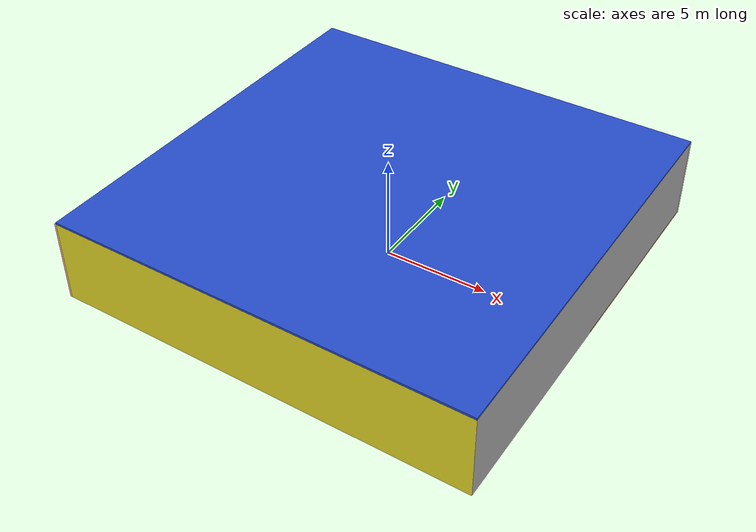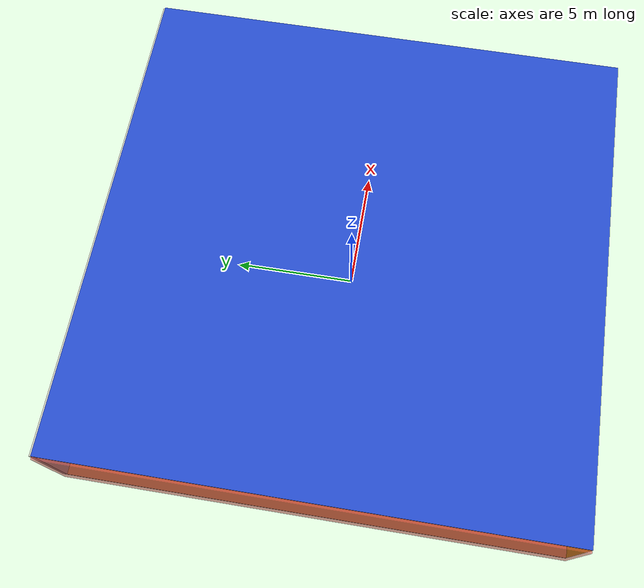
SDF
<sdf version="1.4">
 <world name="default">
  <physics type="ode">
   <max_step_size>0.001</max_step_size>
   <real_time_factor>1</real_time_factor>
   <real_time_update_rate>1000</real_time_update_rate>
   <gravity>0 0 -9.8</gravity>
  </physics>
  <scene><ambient>0.4 0.4 0.4 1</ambient><background>0.7 0.7 0.7 1</background><shadows>1</shadows></scene>
  <model name="Surrounding">
   <static>1</static>
   <link name="Ceiling">
    <collision name="Ceiling_Collision"><geometry><box><size>20 20 0.1</size></box></geometry></collision>
    <visual name="Ceiling_Visual">
     <geometry><box><size>20 20 0.1</size></box></geometry>
     <material>
      <script><uri>file://media/materials/scripts/gazebo.material</uri><name>Gazebo/BlueGlow</name></script>
     </material>
    </visual>
    <pose>0 0 4.05 0 0 0</pose>
   </link>
   <link name="Wall_South">
    <collision name="Wall_South_Collision">
     <geometry><box><size>20 0 4</size></box></geometry>
     <pose>0 0 2 0 -0 0</pose>
    </collision>
    <visual name="Wall_South_Visual">
     <pose>0 0 2 0 -0 0</pose>
     <geometry><box><size>20 0 4</size></box></geometry>
     <material>
      <script><uri>file://media/materials/scripts/gazebo.material</uri><name>Gazebo/YellowGlow</name></script>
     </material>
    </visual>
    <velocity_decay><linear>0</linear><angular>0</angular></velocity_decay>
    <pose>0 -10 0 0 -0 0</pose>
   </link>
   <link name="Wall_East">
    <collision name="Wall_21_Collision">
     <geometry><box><size>20 0 4</size></box></geometry>
     <pose>0 0 2 0 -0 0</pose>
    </collision>
    <visual name="Wall_21_Visual">
     <pose>0 0 2 0 -0 0</pose>
     <geometry><box><size>20 0 4</size></box></geometry>
     <material>
      <script><uri>file://media/materials/scripts/gazebo.material</uri><name>Gazebo/PioneerBody</name></script>
     </material>
    </visual>
    <velocity_decay><linear>0</linear><angular>0</angular></velocity_decay>
    <pose>10 0 0 0 -0 1.5708</pose>
   </link>
   <link name="Wall_North">
    <collision name="Wall_22_Collision">
     <geometry><box><size>20 0.2 4</size></box></geometry>
     <pose>0 0 2 0 -0 0</pose>
    </collision>
    <visual name="Wall_22_Visual">
     <pose>0 0 2 0 -0 0</pose>
     <geometry><box><size>20 0.2 4</size></box></geometry>
     <material>
      <script><uri>file://media/materials/scripts/gazebo.material</uri><name>Gazebo/PaintedWall</name></script>
     </material>
    </visual>
    <velocity_decay><linear>0</linear><angular>0</angular></velocity_decay>
    <pose>0 10 0 0 -0 0</pose>
   </link>
   <link name="Wall_West">
    <collision name="Wall_23_Collision">
     <geometry><box><size>20 0.2 4</size></box></geometry>
     <pose>0 0 2 0 -0 0</pose>
    </collision>
    <visual name="Wall_23_Visual">
     <pose>0 0 2 0 -0 0</pose>
     <geometry><box><size>20 0.2 4</size></box></geometry>
     <material>
      <script><uri>file://media/materials/scripts/gazebo.material</uri><name>Gazebo/RedTransparent</name></script>
     </material>
    </visual>
    <velocity_decay><linear>0</linear><angular>0</angular></velocity_decay>
    <pose>-10 0 0 0 0 -1.5708</pose>
   </link>
   <link name="Ground_link">
    <collision name="collision">
     <pose>0 0 .05 0 -0 0</pose>
     <geometry><box><size>20 20 0.1</size></box></geometry>
    </collision>
    <visual name="visual">
     <pose>0 0 .05 0 -0 0</pose>
     <geometry><box><size>20 20 0.1</size></box></geometry>
     <material>
      <script><uri>file://media/materials/scripts/gazebo.material</uri><name>Gazebo/WoodFloor</name></script>
     </material>
    </visual>
   </link>
   <static>1</static>
  </model>
  <spherical_coordinates>
   <surface_model>EARTH_WGS84</surface_model>
   <latitude_deg>0</latitude_deg>
   <longitude_deg>0</longitude_deg>
   <elevation>0</elevation>
   <heading_deg>0</heading_deg>
  </spherical_coordinates>
  <light name="lightball_0" type="diffuse">
   <diffuse>0.8 0.8 0.8 1</diffuse>
   <specular>0.2 0.2 0.2 1</specular>
   <attenuation>
    <range>100</range>
    <constant>0.7</constant>
    <linear>0.01</linear>
    <quadratic>0.001</quadratic>
   </attenuation>
   <direction>-0.5 0.1 -0.9</direction>
   <pose>2.72794418055 -8.18404734091 1.04139405278 0 0 0</pose>
  </light>
  <light name="lightball_1" type="diffuse">
   <diffuse>0.8 0.8 0.8 1</diffuse>
   <specular>0.2 0.2 0.2 1</specular>
   <attenuation>
    <range>100</range>
    <constant>0.7</constant>
    <linear>0.01</linear>
    <quadratic>0.001</quadratic>
   </attenuation>
   <direction>-0.5 0.1 -0.9</direction>
   <pose>5.64670138111 2.2093449288 0.880083130575 0 0 0</pose>
  </light>
  <light name="lightball_2" type="diffuse">
   <diffuse>0.8 0.8 0.8 1</diffuse>
   <specular>0.2 0.2 0.2 1</specular>
   <attenuation>
    <range>100</range>
    <constant>0.7</constant>
    <linear>0.01</linear>
    <quadratic>0.001</quadratic>
   </attenuation>
   <direction>-0.5 0.1 -0.9</direction>
   <pose>-2.89809434406 2.57713181084 1.43728793736 0 0 0</pose>
  </light>
  <light name="lightball_3" type="diffuse">
   <diffuse>0.8 0.8 0.8 1</diffuse>
   <specular>0.2 0.2 0.2 1</specular>
   <attenuation>
    <range>100</range>
    <constant>0.7</constant>
    <linear>0.01</linear>
    <quadratic>0.001</quadratic>
   </attenuation>
   <direction>-0.5 0.1 -0.9</direction>
   <pose>-8.04154829152 -6.14052763392 0.882079596018 0 0 0</pose>
  </light>
  <light name="lightball_4" type="diffuse">
   <diffuse>0.8 0.8 0.8 1</diffuse>
   <specular>0.2 0.2 0.2 1</specular>
   <attenuation>
    <range>100</range>
    <constant>0.7</constant>
    <linear>0.01</linear>
    <quadratic>0.001</quadratic>
   </attenuation>
   <direction>-0.5 0.1 -0.9</direction>
   <pose>-4.62075140249 -0.849031068122 1.31887967495 0 0 0</pose>
  </light>
  <light name="lightball_5" type="diffuse">
   <diffuse>0.8 0.8 0.8 1</diffuse>
   <specular>0.2 0.2 0.2 1</specular>
   <attenuation>
    <range>100</range>
    <constant>0.7</constant>
    <linear>0.01</linear>
    <quadratic>0.001</quadratic>
   </attenuation>
   <direction>-0.5 0.1 -0.9</direction>
   <pose>-0.614738424198 -3.43175225442 3.14343083111 0 0 0</pose>
  </light>
  <light name="lightball_6" type="diffuse">
   <diffuse>0.8 0.8 0.8 1</diffuse>
   <specular>0.2 0.2 0.2 1</specular>
   <attenuation>
    <range>100</range>
    <constant>0.7</constant>
    <linear>0.01</linear>
    <quadratic>0.001</quadratic>
   </attenuation>
   <direction>-0.5 0.1 -0.9</direction>
   <pose>8.84543568447 -4.45557160825 2.82784555963 0 0 0</pose>
  </light>
  <light name="lightball_7" type="diffuse">
   <diffuse>0.8 0.8 0.8 1</diffuse>
   <specular>0.2 0.2 0.2 1</specular>
   <attenuation>
    <range>100</range>
    <constant>0.7</constant>
    <linear>0.01</linear>
    <quadratic>0.001</quadratic>
   </attenuation>
   <direction>-0.5 0.1 -0.9</direction>
   <pose>1.7967337423 6.38941317345 1.64905588826 0 0 0</pose>
  </light>
  <light name="lightball_8" type="diffuse">
   <diffuse>0.8 0.8 0.8 1</diffuse>
   <specular>0.2 0.2 0.2 1</specular>
   <attenuation>
    <range>100</range>
    <constant>0.7</constant>
    <linear>0.01</linear>
    <quadratic>0.001</quadratic>
   </attenuation>
   <direction>-0.5 0.1 -0.9</direction>
   <pose>-9.53935615282 -7.69729938253 3.23555467838 0 0 0</pose>
  </light>
  <light name="lightball_9" type="diffuse">
   <diffuse>0.8 0.8 0.8 1</diffuse>
   <specular>0.2 0.2 0.2 1</specular>
   <attenuation>
    <range>100</range>
    <constant>0.7</constant>
    <linear>0.01</linear>
    <quadratic>0.001</quadratic>
   </attenuation>
   <direction>-0.5 0.1 -0.9</direction>
   <pose>7.05820571683 -1.60569659574 2.66404381369 0 0 0</pose>
  </light>
  <light name="lightball_10" type="diffuse">
   <diffuse>0.8 0.8 0.8 1</diffuse>
   <specular>0.2 0.2 0.2 1</specular>
   <attenuation>
    <range>100</range>
    <constant>0.7</constant>
    <linear>0.01</linear>
    <quadratic>0.001</quadratic>
   </attenuation>
   <direction>-0.5 0.1 -0.9</direction>
   <pose>8.76468460118 2.37818752001 3.01559584029 0 0 0</pose>
  </light>
  <light name="lightball_11" type="diffuse">
   <diffuse>0.8 0.8 0.8 1</diffuse>
   <specular>0.2 0.2 0.2 1</specular>
   <attenuation>
    <range>100</range>
    <constant>0.7</constant>
    <linear>0.01</linear>
    <quadratic>0.001</quadratic>
   </attenuation>
   <direction>-0.5 0.1 -0.9</direction>
   <pose>-5.33530057588 -5.18177596565 3.24549982083 0 0 0</pose>
  </light>
  <light name="lightball_12" type="diffuse">
   <diffuse>0.8 0.8 0.8 1</diffuse>
   <specular>0.2 0.2 0.2 1</specular>
   <attenuation>
    <range>100</range>
    <constant>0.7</constant>
    <linear>0.01</linear>
    <quadratic>0.001</quadratic>
   </attenuation>
   <direction>-0.5 0.1 -0.9</direction>
   <pose>6.06792603424 -5.44840577774 0.539636173662 0 0 0</pose>
  </light>
  <light name="lightball_13" type="diffuse">
   <diffuse>0.8 0.8 0.8 1</diffuse>
   <specular>0.2 0.2 0.2 1</specular>
   <attenuation>
    <range>100</range>
    <constant>0.7</constant>
    <linear>0.01</linear>
    <quadratic>0.001</quadratic>
   </attenuation>
   <direction>-0.5 0.1 -0.9</direction>
   <pose>-8.6629204958 -7.09645148278 0.612886629158 0 0 0</pose>
  </light>
  <include>
   <uri>model://construction_cone</uri>
   <pose>-5.53364466457 -6.64380867452 0 0 0 2.80362977598</pose>
  </include>
  <include><uri>model://cabinet</uri><pose>-4.39759868067 0.599883173741 0 0 0 1.45397595871</pose></include>
  <include><uri>model://cabinet</uri><pose>-1.62460107076 -4.00663354774 0 0 0 0.333641679212</pose></include>
  <include>
   <uri>model://robocup_3Dsim_goal</uri>
   <pose>4.20339007992 4.29280437004 0 0 0 2.83737232439</pose>
  </include>
  <include><uri>model://table</uri><pose>4.49615539385 6.58646077843 0 0 0 2.7549814392</pose></include>
 </world>
</sdf>

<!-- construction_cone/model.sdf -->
<sdf version="1.5">
  <model name="Construction Cone">
    <link name="link">
      <collision name="collision">
        <geometry>
          <mesh>
            <scale>10 10 10</scale>
            <uri>file://isr-testbed/construction_cone/meshes/construction_cone.dae</uri>
          </mesh>
        </geometry>
      </collision>
      <visual name="visual">
        <geometry>
          <mesh>
            <scale>10 10 10</scale>
            <uri>file://isr-testbed/construction_cone/meshes/construction_cone.dae</uri>
          </mesh>
        </geometry>
      </visual>
    </link>
  </model>
</sdf>

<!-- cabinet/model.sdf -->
<sdf version="1.5">
  <model name="cabinet">
    <static>true</static>
    <link name="cabinet_bottom_plate">
      <inertial>
        <pose>0 0 -1 0 0 0</pose>
        <inertia>
          <ixx>2.050000</ixx>
          <ixy>0</ixy>
          <ixz>0</ixz>
          <iyy>2.050000</iyy>
          <iyz>0</iyz>
          <izz>2.050000</izz>
        </inertia>
        <mass>25.000000</mass>
      </inertial>
      <collision name="cabinet_bottom_plate_geom">
        <pose>0 0 0.010000 0 0 0</pose>
        <geometry>
          <box>
            <size>0.450000 0.450000 0.020000</size>
          </box>
        </geometry>
      </collision>
      <visual name="cabinet_bottom_plate_geom_visual">
        <pose>0 0 0.010000 0 0 0</pose>
        <geometry>
          <box>
            <size>0.450000 0.450000 0.020000</size>
          </box>
        </geometry>
        <material>
          <script>
            <uri>model://media/materials/scripts/gazebo.material</uri>
            <name>Gazebo/Wood</name>
          </script>
        </material>
      </visual>
      <collision name="cabinet_bottom_plate_geom_cabinet_back_plate">
        <pose>0.235000 0 0.510000 0 0 0</pose>
        <geometry>
          <box>
            <size>0.020000 0.450000 1.020000</size>
          </box>
        </geometry>
      </collision>
      <visual name="cabinet_bottom_plate_geom_cabinet_back_plate_visual">
        <pose>0.235000 0 0.510000 0 0 0</pose>
        <geometry>
          <box>
            <size>0.020000 0.450000 1.020000</size>
          </box>
        </geometry>
        <material>
          <script>
            <uri>model://media/materials/scripts/gazebo.material</uri>
            <name>Gazebo/Wood</name>
          </script>
        </material>
      </visual>
      <collision name="cabinet_bottom_plate_geom_cabinet_left_plate">
        <pose>0 0.235000 0.510000 0 0 0</pose>
        <geometry>
          <box>
            <size>0.450000 0.020000 1.020000</size>
          </box>
        </geometry>
      </collision>
      <visual name="cabinet_bottom_plate_geom_cabinet_left_plate_visual">
        <pose>0 0.235000 0.510000 0 0 0</pose>
        <geometry>
          <box>
            <size>0.450000 0.020000 1.020000</size>
          </box>
        </geometry>
        <material>
          <script>
            <uri>model://media/materials/scripts/gazebo.material</uri>
            <name>Gazebo/Wood</name>
          </script>
        </material>
      </visual>
      <collision name="cabinet_bottom_plate_geom_cabinet_middle_plate">
        <pose>0 0 0.510000 0 0 0</pose>
        <geometry>
          <box>
            <size>0.450000 0.450000 0.020000</size>
          </box>
        </geometry>
      </collision>
      <visual name="cabinet_bottom_plate_geom_cabinet_middle_plate_visual">
        <pose>0 0 0.510000 0 0 0</pose>
        <geometry>
          <box>
            <size>0.450000 0.450000 0.020000</size>
          </box>
        </geometry>
        <material>
          <script>
            <uri>model://media/materials/scripts/gazebo.material</uri>
            <name>Gazebo/Wood</name>
          </script>
        </material>
      </visual>
      <collision name="cabinet_bottom_plate_geom_cabinet_right_plate">
        <pose>0 -0.235000 0.510000 0 0 0</pose>
        <geometry>
          <box>
            <size>0.450000 0.020000 1.020000</size>
          </box>
        </geometry>
      </collision>
      <visual name="cabinet_bottom_plate_geom_cabinet_right_plate_visual">
        <pose>0 -0.235000 0.510000 0 0 0</pose>
        <geometry>
          <box>
            <size>0.450000 0.020000 1.020000</size>
          </box>
        </geometry>
        <material>
          <script>
            <uri>model://media/materials/scripts/gazebo.material</uri>
            <name>Gazebo/Wood</name>
          </script>
        </material>
      </visual>
      <collision name="cabinet_bottom_plate_geom_cabinet_top_plate">
        <pose>0 0 1.010000 0 0 0</pose>
        <geometry>
          <box>
            <size>0.450000 0.450000 0.020000</size>
          </box>
        </geometry>
      </collision>
      <visual name="cabinet_bottom_plate_geom_cabinet_top_plate_visual">
        <pose>0 0 1.010000 0 0 0</pose>
        <geometry>
          <box>
            <size>0.450000 0.450000 0.020000</size>
          </box>
        </geometry>
        <material>
          <script>
            <uri>model://media/materials/scripts/gazebo.material</uri>
            <name>Gazebo/Wood</name>
          </script>
        </material>
      </visual>
    </link>
  </model>
</sdf>

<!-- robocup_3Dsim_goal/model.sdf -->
<sdf version="1.5">
  <model name="robocup_3d_goal">
    <static>true</static>
    <link name="left_post">
      <pose>0 1.05 0.45 0 0 0</pose>
      <collision name="collision">
        <geometry>
          <cylinder>
            <radius>0.05</radius>
            <length>0.9</length>
          </cylinder>
        </geometry>
      </collision>
      <visual name="visual">
        <geometry>
          <cylinder>
            <radius>0.05</radius>
            <length>0.9</length>
          </cylinder>
        </geometry>
        <material>
          <script>
            <uri>file://media/materials/scripts/gazebo.material</uri>
            <name>Gazebo/ZincYellow</name>
          </script>
        </material>
      </visual>
    </link>
    <link name="left_support_horiz_lower">
      <pose>0.30 1.05 0.01 0 0 0</pose>
      <collision name="collision">
        <geometry>
          <box>
            <size>0.50 0.02 0.02</size>
          </box>
        </geometry>
      </collision>
      <visual name="visual">
        <geometry>
          <box>
            <size>0.50 0.02 0.02</size>
          </box>
        </geometry>
        <material>
          <script>
            <uri>file://media/materials/scripts/gazebo.material</uri>
            <name>Gazebo/White</name>
          </script>
        </material>
      </visual>
    </link>
    <link name="left_support_horiz_upper">
      <pose>0.30 1.05 0.79 0 0 0</pose>
      <collision name="collision">
        <geometry>
          <box>
            <size>0.50 0.02 0.02</size>
          </box>
        </geometry>
      </collision>
      <visual name="visual">
        <geometry>
          <box>
            <size>0.50 0.02 0.02</size>
          </box>
        </geometry>
        <material>
          <script>
            <uri>file://media/materials/scripts/gazebo.material</uri>
            <name>Gazebo/White</name>
          </script>
        </material>
      </visual>
    </link>
    <link name="left_support_vertical">
      <pose>0.56 1.05 0.4 0 1.5708 0</pose>
      <collision name="collision">
        <geometry>
          <box>
            <size>0.80 0.02 0.02</size>
          </box>
        </geometry>
      </collision>
      <visual name="visual">
        <geometry>
          <box>
            <size>0.80 0.02 0.02</size>
          </box>
        </geometry>
        <material>
          <script>
            <uri>file://media/materials/scripts/gazebo.material</uri>
            <name>Gazebo/White</name>
          </script>
        </material>
      </visual>
    </link>
    <link name="right_support_horiz_lower">
      <pose>0.30 -1.05 0.01 0 0 0</pose>
      <collision name="collision">
        <geometry>
          <box>
            <size>0.50 0.02 0.02</size>
          </box>
        </geometry>
      </collision>
      <visual name="visual">
        <geometry>
          <box>
            <size>0.50 0.02 0.02</size>
          </box>
        </geometry>
        <material>
          <script>
            <uri>file://media/materials/scripts/gazebo.material</uri>
            <name>Gazebo/White</name>
          </script>
        </material>
      </visual>
    </link>
    <link name="right_support_horiz_upper">
      <pose>0.30 -1.05 0.79 0 0 0</pose>
      <collision name="collision">
        <geometry>
          <box>
            <size>0.50 0.02 0.02</size>
          </box>
        </geometry>
      </collision>
      <visual name="visual">
        <geometry>
          <box>
            <size>0.50 0.02 0.02</size>
          </box>
        </geometry>
        <material>
          <script>
            <uri>file://media/materials/scripts/gazebo.material</uri>
            <name>Gazebo/White</name>
          </script>
        </material>
      </visual>
    </link>
    <link name="right_support_vertical">
      <pose>0.56 -1.05 0.4 0 1.5708 0</pose>
      <collision name="collision">
        <geometry>
          <box>
            <size>0.80 0.02 0.02</size>
          </box>
        </geometry>
      </collision>
      <visual name="visual">
        <geometry>
          <box>
            <size>0.80 0.02 0.02</size>
          </box>
        </geometry>
        <material>
          <script>
            <uri>file://media/materials/scripts/gazebo.material</uri>
            <name>Gazebo/White</name>
          </script>
        </material>
      </visual>
    </link>
    <link name="center_support_horiz_lower">
      <pose>0.56 0 0.01 0 1.5708 0</pose>
      <collision name="collision">
        <geometry>
          <box>
            <size>0.02 2.08 0.02</size>
          </box>
        </geometry>
      </collision>
      <visual name="visual">
        <geometry>
          <box>
            <size>0.02 2.08 0.02</size>
          </box>
        </geometry>
        <material>
          <script>
            <uri>file://media/materials/scripts/gazebo.material</uri>
            <name>Gazebo/White</name>
          </script>
        </material>
      </visual>
    </link>
    <link name="center_support_horiz_upper">
      <pose>0.56 0 0.79 0 1.5708 0</pose>
      <collision name="collision">
        <geometry>
          <box>
            <size>0.02 2.08 0.02</size>
          </box>
        </geometry>
      </collision>
      <visual name="visual">
        <geometry>
          <box>
            <size>0.02 2.08 0.02</size>
          </box>
        </geometry>
        <material>
          <script>
            <uri>file://media/materials/scripts/gazebo.material</uri>
            <name>Gazebo/White</name>
          </script>
        </material>
      </visual>
    </link>
    <link name="right_post">
      <pose>0 -1.05 0.45 0 0 0</pose>
      <collision name="collision">
        <geometry>
          <cylinder>
            <radius>0.05</radius>
            <length>0.9</length>
          </cylinder>
        </geometry>
      </collision>
      <visual name="visual">
        <geometry>
          <cylinder>
            <radius>0.05</radius>
            <length>0.9</length>
          </cylinder>
        </geometry>
        <material>
          <script>
            <uri>file://media/materials/scripts/gazebo.material</uri>
            <name>Gazebo/ZincYellow</name>
          </script>
        </material>
      </visual>
    </link>
    <link name="crossbar">
      <pose>0 0 0.85 1.57 1.57 0</pose>
      <collision name="collision">
        <geometry>
          <cylinder>
            <radius>0.05</radius>
            <length>2.0</length>
          </cylinder>
        </geometry>
      </collision>
      <visual name="visual">
        <geometry>
          <cylinder>
            <radius>0.05</radius>
            <length>2.0</length>
          </cylinder>
        </geometry>
        <material>
          <script>
            <uri>file://media/materials/scripts/gazebo.material</uri>
            <name>Gazebo/ZincYellow</name>
          </script>
        </material>
      </visual>
    </link>
    <link name="center_net">
      <pose>0.56 0 0.40 0 0 0</pose>
      <collision name="collision">
        <geometry>
          <box>
            <size>0.01 2.1 0.80</size>
          </box>
        </geometry>
      </collision>
      <visual name="visual">
        <geometry>
          <box>
            <size>0.01 2.1 0.80</size>
          </box>
        </geometry>
        <material>
          <script>
            <uri>model://../model_source/models/robocup09_spl_field/materials/scripts/</uri>
            <uri>model://../model_source/models/robocup09_spl_field/materials/textures/</uri>
            <name>RoboCup/Net</name>
          </script>
        </material>
      </visual>
    </link>
    <link name="left_net">
      <pose>0.30 1.05 0.40 0 0 0</pose>
      <collision name="collision">
        <geometry>
          <box>
            <size>0.50 0.01 0.76</size>
          </box>
        </geometry>
      </collision>
      <visual name="visual">
        <geometry>
          <box>
            <size>0.50 0.01 0.76</size>
          </box>
        </geometry>
        <material>
          <script>
            <uri>model://../model_source/models/robocup09_spl_field/materials/scripts/</uri>
            <uri>model://../model_source/models/robocup09_spl_field/materials/textures/</uri>
            <name>RoboCup/Net</name>
          </script>
        </material>
      </visual>
    </link>
    <link name="right_net">
      <pose>0.30 -1.05 0.40 0 0 0</pose>
      <collision name="collision">
        <geometry>
          <box>
            <size>0.50 0.01 0.76</size>
          </box>
        </geometry>
      </collision>
      <visual name="visual">
        <geometry>
          <box>
            <size>0.50 0.01 0.76</size>
          </box>
        </geometry>
        <material>
          <script>
            <uri>model://../model_source/models/robocup09_spl_field/materials/scripts/</uri>
            <uri>model://../model_source/models/robocup09_spl_field/materials/textures/</uri>
            <name>RoboCup/Net</name>
          </script>
        </material>
      </visual>
    </link>
  </model>
</sdf>

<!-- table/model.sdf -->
<sdf version="1.5">
  <model name="table">
    <static>true</static>
    <link name="link">
      <collision name="surface">
        <pose>0 0 1.0 0 0 0</pose>
        <geometry>
          <box>
            <size>1.5 0.8 0.03</size>
          </box>
        </geometry>
        <surface>
          <friction>
            <ode>
              <mu>0.6</mu>
              <mu2>0.6</mu2>
            </ode>
          </friction>
        </surface>
      </collision>
      <visual name="visual1">
        <pose>0 0 1.0 0 0 0</pose>
        <geometry>
          <box>
            <size>1.5 0.8 0.03</size>
          </box>
        </geometry>
        <material>
          <script>
            <uri>model://media/materials/scripts/gazebo.material</uri>
            <name>Gazebo/Wood</name>
          </script>
        </material>
      </visual>
      <collision name="front_left_leg">
        <pose>0.68 0.38 0.5 0 0 0</pose>
        <geometry>
          <cylinder>
            <radius>0.02</radius>
            <length>1.0</length>
          </cylinder>
        </geometry>
      </collision>
      <visual name="front_left_leg">
        <pose>0.68 0.38 0.5 0 0 0</pose>
        <geometry>
          <cylinder>
            <radius>0.02</radius>
            <length>1.0</length>
          </cylinder>
        </geometry>
        <material>
          <script>
            <uri>model://media/materials/scripts/gazebo.material</uri>
            <name>Gazebo/Grey</name>
          </script>
        </material>
      </visual>
      <collision name="front_right_leg">
        <pose>0.68 -0.38 0.5 0 0 0</pose>
        <geometry>
          <cylinder>
            <radius>0.02</radius>
            <length>1.0</length>
          </cylinder>
        </geometry>
      </collision>
      <visual name="front_right_leg">
        <pose>0.68 -0.38 0.5 0 0 0</pose>
        <geometry>
          <cylinder>
            <radius>0.02</radius>
            <length>1.0</length>
          </cylinder>
        </geometry>
        <material>
          <script>
            <uri>model://media/materials/scripts/gazebo.material</uri>
            <name>Gazebo/Grey</name>
          </script>
        </material>
      </visual>
      <collision name="back_right_leg">
        <pose>-0.68 -0.38 0.5 0 0 0</pose>
        <geometry>
          <cylinder>
            <radius>0.02</radius>
            <length>1.0</length>
          </cylinder>
        </geometry>
      </collision>
      <visual name="back_right_leg">
        <pose>-0.68 -0.38 0.5 0 0 0</pose>
        <geometry>
          <cylinder>
            <radius>0.02</radius>
            <length>1.0</length>
          </cylinder>
        </geometry>
        <material>
          <script>
            <uri>model://media/materials/scripts/gazebo.material</uri>
            <name>Gazebo/Grey</name>
          </script>
        </material>
      </visual>
      <collision name="back_left_leg">
        <pose>-0.68 0.38 0.5 0 0 0</pose>
        <geometry>
          <cylinder>
            <radius>0.02</radius>
            <length>1.0</length>
          </cylinder>
        </geometry>
      </collision>
      <visual name="back_left_leg">
        <pose>-0.68 0.38 0.5 0 0 0</pose>
        <geometry>
          <cylinder>
            <radius>0.02</radius>
            <length>1.0</length>
          </cylinder>
        </geometry>
        <material>
          <script>
            <uri>model://media/materials/scripts/gazebo.material</uri>
            <name>Gazebo/Grey</name>
          </script>
        </material>
      </visual>
    </link>
  </model>
</sdf>
